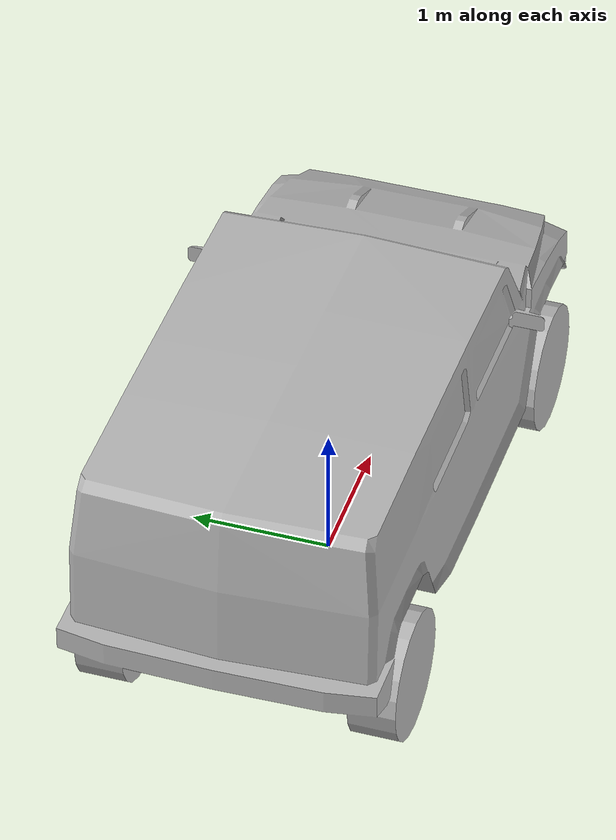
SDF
<?xml version="1.0" ?>
<sdf version="1.6">
  <model name="suv">
    <static>true</static>
    <link name="link">
      <collision name="collision">
        <pose>0 0 0 0 0 -1.57079632679</pose>
        <geometry>
          <mesh>
            <scale>0.06 0.06 0.06</scale>
            <uri>model://suv/meshes/suv.obj</uri>
          </mesh>
        </geometry>
      </collision>
      <visual name="visual">
        <pose>0 0 0 0 0 -1.57079632679</pose>
        <geometry>
          <mesh>
            <scale>0.06 0.06 0.06</scale>
            <uri>model://suv/meshes/suv.obj</uri>
          </mesh>
        </geometry>
      </visual>
    </link>
  </model>
</sdf>
